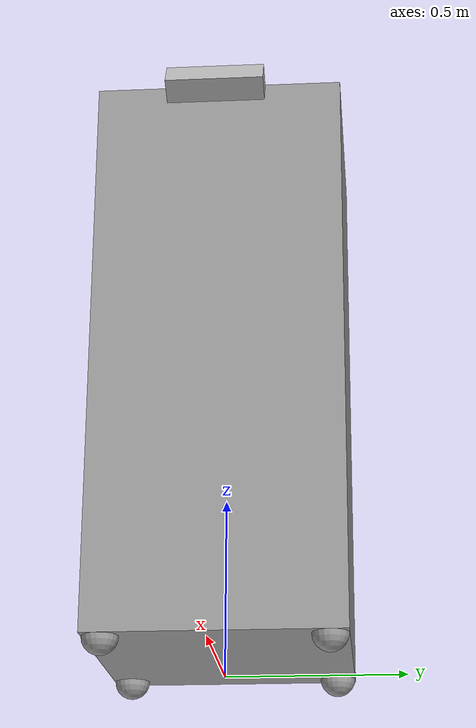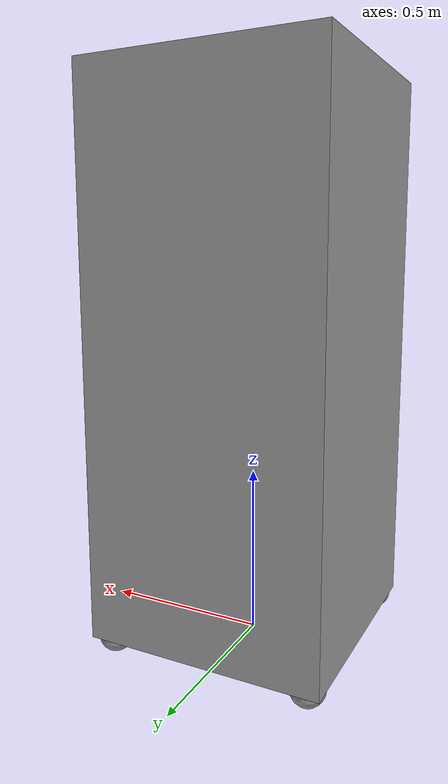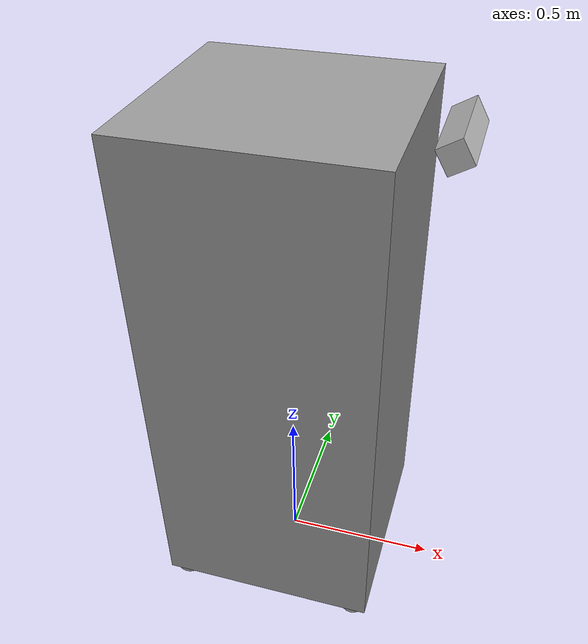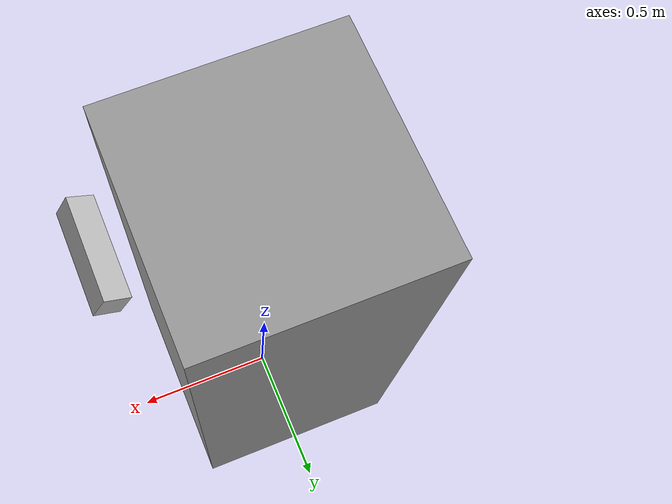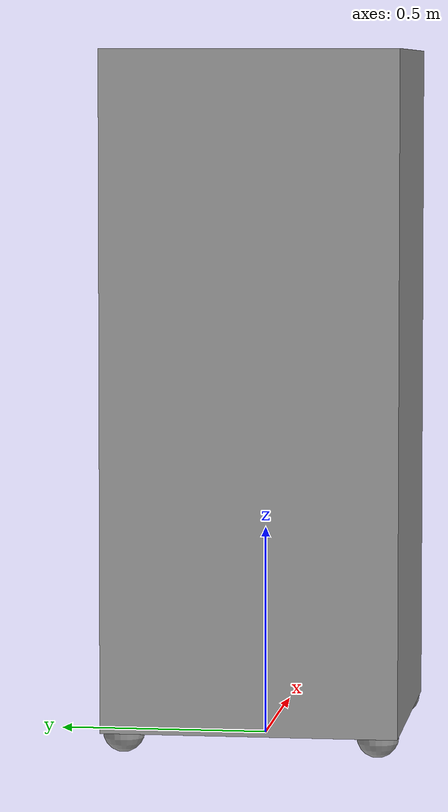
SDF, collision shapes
<?xml version='1.0'?>
<sdf version='1.7'>
<model  name='nested_model'>
<shadows>false</shadows>
   <include>
      <uri>model://zed_mini</uri>
      <pose>0.45 0 1.6 0 1.0472 0</pose>
    </include>
    <include>
      <uri>model://move_wheel_box</uri>
      <frame name="move_wheel_box"></frame>
      <pose>0 0 0.05 0 0 0</pose>
    </include>

    <joint name='link_1_JOINT_0' type='fixed'>
      <parent>move_wheel_box::link_1</parent>
      <child>zed_mini::camera_link</child>
    </joint>

    <static>0</static>
    <allow_auto_disable>1</allow_auto_disable>
</model>
</sdf>

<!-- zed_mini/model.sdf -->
<sdf version='1.7'>
    <model name='zed_mini'>
    <shadows>false</shadows>
      <link name='camera_link'>
        <inertial>
          <mass>0.1</mass>
        </inertial>

        <collision name='collision'>
          <geometry>
            <box>
              <size>0.073 0.276 0.072</size>
            </box>
          </geometry>
        </collision>
        <visual name='visual'>
          <cast_shadows>false</cast_shadows>
          <geometry>
            <mesh>
              <uri>../description/meshes/kinect.dae</uri>
            </mesh>
          </geometry>
        </visual>
        <sensor name='camera1' type='multicamera'>
          <pose>0 0 0 0 -0 0</pose>
          <update_rate>15</update_rate>
          <visualize>1</visualize>
          <camera name='left'>
            <pose relative_to='camera1'>0 0.0315 0 0 -0 0</pose>
            <horizontal_fov>1.373574</horizontal_fov>
            <image>
              <width>5472</width>
              <height>3648</height>
              <format>R8G8B8</format>
            </image>
            <clip>
              <near>0.1</near>
              <far>15</far>
            </clip>
            <noise>
              <type>gaussian</type>
              <mean>0</mean>
              <stddev>0.007</stddev>
            </noise>
          </camera>
          <plugin name='camera_controller' filename='libgazebo_ros_camera.so'>
            <ros>
              <namespace>demo_cam</namespace>
              <remapping>mycamera/left/image_raw:=mycamera/left/image_demo</remapping>
              <remapping>mycamera/left/camera_info:=mycamera/left/camera_info_demo</remapping>
            </ros>
            <camera_name>mycamera</camera_name>
          </plugin>
        </sensor>
      </link>
    </model>
    <static>0</static>
    <allow_auto_disable>1</allow_auto_disable>
</sdf>

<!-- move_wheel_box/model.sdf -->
<sdf version='1.7'>
  <model name='move_wheel_box'>
  <shadows>false</shadows>
    <link name='link_1'>
      <inertial>
        <mass>50</mass>
        <inertia>
          <ixx>12.7083</ixx>
          <ixy>0</ixy>
          <ixz>0</ixz>
          <iyy>12.7083</iyy>
          <iyz>0</iyz>
          <izz>4.08333</izz>
        </inertia>
        <pose>0 0 0 0 -0 0</pose>
      </inertial>
      <pose>-0.0 0.0 0.8 0 -0 0</pose>
      <gravity>1</gravity>
      <self_collide>0</self_collide>
      <kinematic>0</kinematic>
      <enable_wind>0</enable_wind>
      <visual name='visual'>
        <pose>0 0 0 0 -0 0</pose>
        <geometry>
          <box>
            <size>0.7 0.7 1.6</size>
          </box>
        </geometry>
        <material>
          <lighting>1</lighting>
          <script>
            <uri>file://media/materials/scripts/gazebo.material</uri>
            <name>Gazebo/Grey</name>
          </script>
          <shader type='pixel'>
            <normal_map>__default__</normal_map>
          </shader>
          <ambient>0.3 0.3 0.3 1</ambient>
          <diffuse>0.7 0.7 0.7 1</diffuse>
          <specular>0.01 0.01 0.01 1</specular>
          <emissive>0 0 0 1</emissive>
        </material>
        <transparency>0</transparency>
        <cast_shadows>0</cast_shadows>
      </visual>
      <collision name='collision'>
        <laser_retro>0</laser_retro>
        <max_contacts>10</max_contacts>
        <pose>0 0 0 0 -0 0</pose>
        <geometry>
          <box>
            <size>0.7 0.7 1.6</size>
          </box>
        </geometry>
        <surface>
          <friction>
            <ode>
              <mu>1</mu>
              <mu2>1</mu2>
              <fdir1>0 0 0</fdir1>
              <slip1>0</slip1>
              <slip2>0</slip2>
            </ode>
            <torsional>
              <coefficient>1</coefficient>
              <patch_radius>0</patch_radius>
              <surface_radius>0</surface_radius>
              <use_patch_radius>1</use_patch_radius>
              <ode>
                <slip>0</slip>
              </ode>
            </torsional>
          </friction>
          <bounce>
            <restitution_coefficient>0</restitution_coefficient>
            <threshold>1e+06</threshold>
          </bounce>
          <contact>
            <collide_without_contact>0</collide_without_contact>
            <collide_without_contact_bitmask>1</collide_without_contact_bitmask>
            <collide_bitmask>1</collide_bitmask>
            <ode>
              <soft_cfm>0</soft_cfm>
              <soft_erp>0.2</soft_erp>
              <kp>1e+13</kp>
              <kd>1</kd>
              <max_vel>0.01</max_vel>
              <min_depth>0</min_depth>
            </ode>
            <bullet>
              <split_impulse>1</split_impulse>
              <split_impulse_penetration_threshold>-0.01</split_impulse_penetration_threshold>
              <soft_cfm>0</soft_cfm>
              <soft_erp>0.2</soft_erp>
              <kp>1e+13</kp>
              <kd>1</kd>
            </bullet>
          </contact>
        </surface>
      </collision>
    </link>
    <plugin name='planar_move' filename='libgazebo_ros_planar_move.so'>
        <ros>
          <namespace>/demo</namespace>
          <remapping>cmd_vel:=cmd_demo</remapping>
          <remapping>odom:=odom_demo</remapping>
        </ros>

        <update_rate>100</update_rate>
        <publish_rate>10</publish_rate>

        <!-- output -->
        <publish_odom>true</publish_odom>
        <publish_odom_tf>true</publish_odom_tf>

        <odometry_frame>odom_demo</odometry_frame>
        <robot_base_frame>link</robot_base_frame>

        <covariance_x>0.0001</covariance_x>
        <covariance_y>0.0001</covariance_y>
        <covariance_yaw>0.01</covariance_yaw>
    </plugin>
    <link name='link_2'>
      <inertial>
        <mass>0.0311857</mass>
        <inertia>
          <ixx>0.00030897</ixx>
          <ixy>0</ixy>
          <ixz>0</ixz>
          <iyy>0.00030897</iyy>
          <iyz>0</iyz>
          <izz>0.00030897</izz>
        </inertia>
        <pose>0 0 0 0 -0 0</pose>
      </inertial>
      <pose>-0.3 -0.3 -0.0 0 -0 0</pose>
      <gravity>1</gravity>
      <self_collide>0</self_collide>
      <kinematic>0</kinematic>
      <enable_wind>0</enable_wind>
      <visual name='visual'>
        <pose>0 0 0 0 -0 0</pose>
        <geometry>
          <sphere>
            <radius>0.05</radius>
          </sphere>
        </geometry>
        <material>
          <lighting>1</lighting>
          <script>
            <uri>file://media/materials/scripts/gazebo.material</uri>
            <name>Gazebo/Grey</name>
          </script>
          <shader type='pixel'>
            <normal_map>__default__</normal_map>
          </shader>
          <ambient>0.3 0.3 0.3 1</ambient>
          <diffuse>0.7 0.7 0.7 1</diffuse>
          <specular>0.01 0.01 0.01 1</specular>
          <emissive>0 0 0 1</emissive>
        </material>
        <transparency>0</transparency>
        <cast_shadows>0</cast_shadows>
      </visual>
      <collision name='collision'>
        <laser_retro>0</laser_retro>
        <max_contacts>10</max_contacts>
        <pose>0 0 0 0 -0 0</pose>
        <geometry>
          <sphere>
            <radius>0.05</radius>
          </sphere>
        </geometry>
        <surface>
          <friction>
            <ode>
              <mu>1</mu>
              <mu2>1</mu2>
              <fdir1>0 0 0</fdir1>
              <slip1>0</slip1>
              <slip2>0</slip2>
            </ode>
            <torsional>
              <coefficient>1</coefficient>
              <patch_radius>0</patch_radius>
              <surface_radius>0</surface_radius>
              <use_patch_radius>1</use_patch_radius>
              <ode>
                <slip>0</slip>
              </ode>
            </torsional>
          </friction>
          <bounce>
            <restitution_coefficient>0</restitution_coefficient>
            <threshold>1e+06</threshold>
          </bounce>
          <contact>
            <collide_without_contact>0</collide_without_contact>
            <collide_without_contact_bitmask>1</collide_without_contact_bitmask>
            <collide_bitmask>1</collide_bitmask>
            <ode>
              <soft_cfm>0</soft_cfm>
              <soft_erp>0.2</soft_erp>
              <kp>1e+13</kp>
              <kd>1</kd>
              <max_vel>0.01</max_vel>
              <min_depth>0</min_depth>
            </ode>
            <bullet>
              <split_impulse>1</split_impulse>
              <split_impulse_penetration_threshold>-0.01</split_impulse_penetration_threshold>
              <soft_cfm>0</soft_cfm>
              <soft_erp>0.2</soft_erp>
              <kp>1e+13</kp>
              <kd>1</kd>
            </bullet>
          </contact>
        </surface>
      </collision>
    </link>
    <link name='link_2_clone'>
      <inertial>
        <mass>0.0311857</mass>
        <inertia>
          <ixx>0.00030897</ixx>
          <ixy>0</ixy>
          <ixz>0</ixz>
          <iyy>0.00030897</iyy>
          <iyz>0</iyz>
          <izz>0.00030897</izz>
        </inertia>
        <pose>0 0 0 0 -0 0</pose>
      </inertial>
      <pose>-0.3 0.3 -0.0 0 -0 0</pose>
      <gravity>1</gravity>
      <self_collide>0</self_collide>
      <kinematic>0</kinematic>
      <enable_wind>0</enable_wind>
      <visual name='visual'>
        <pose>0 0 0 0 -0 0</pose>
        <geometry>
          <sphere>
            <radius>0.05</radius>
          </sphere>
        </geometry>
        <material>
          <lighting>1</lighting>
          <script>
            <uri>file://media/materials/scripts/gazebo.material</uri>
            <name>Gazebo/Grey</name>
          </script>
          <shader type='pixel'>
            <normal_map>__default__</normal_map>
          </shader>
          <ambient>0.3 0.3 0.3 1</ambient>
          <diffuse>0.7 0.7 0.7 1</diffuse>
          <specular>0.01 0.01 0.01 1</specular>
          <emissive>0 0 0 1</emissive>
        </material>
        <transparency>0</transparency>
        <cast_shadows>0</cast_shadows>
      </visual>
      <collision name='collision'>
        <laser_retro>0</laser_retro>
        <max_contacts>10</max_contacts>
        <pose>0 0 0 0 -0 0</pose>
        <geometry>
          <sphere>
            <radius>0.05</radius>
          </sphere>
        </geometry>
        <surface>
          <friction>
            <ode>
              <mu>1</mu>
              <mu2>1</mu2>
              <fdir1>0 0 0</fdir1>
              <slip1>0</slip1>
              <slip2>0</slip2>
            </ode>
            <torsional>
              <coefficient>1</coefficient>
              <patch_radius>0</patch_radius>
              <surface_radius>0</surface_radius>
              <use_patch_radius>1</use_patch_radius>
              <ode>
                <slip>0</slip>
              </ode>
            </torsional>
          </friction>
          <bounce>
            <restitution_coefficient>0</restitution_coefficient>
            <threshold>1e+06</threshold>
          </bounce>
          <contact>
            <collide_without_contact>0</collide_without_contact>
            <collide_without_contact_bitmask>1</collide_without_contact_bitmask>
            <collide_bitmask>1</collide_bitmask>
            <ode>
              <soft_cfm>0</soft_cfm>
              <soft_erp>0.2</soft_erp>
              <kp>1e+13</kp>
              <kd>1</kd>
              <max_vel>0.01</max_vel>
              <min_depth>0</min_depth>
            </ode>
            <bullet>
              <split_impulse>1</split_impulse>
              <split_impulse_penetration_threshold>-0.01</split_impulse_penetration_threshold>
              <soft_cfm>0</soft_cfm>
              <soft_erp>0.2</soft_erp>
              <kp>1e+13</kp>
              <kd>1</kd>
            </bullet>
          </contact>
        </surface>
      </collision>
    </link>
    <link name='link_2_clone_0'>
      <inertial>
        <mass>0.0311857</mass>
        <inertia>
          <ixx>0.00030897</ixx>
          <ixy>0</ixy>
          <ixz>0</ixz>
          <iyy>0.00030897</iyy>
          <iyz>0</iyz>
          <izz>0.00030897</izz>
        </inertia>
        <pose>0 0 0 0 -0 0</pose>
      </inertial>
      <pose>0.3 -0.3 -0.0 0 -0 0</pose>
      <gravity>1</gravity>
      <self_collide>0</self_collide>
      <kinematic>0</kinematic>
      <enable_wind>0</enable_wind>
      <visual name='visual'>
        <pose>0 0 0 0 -0 0</pose>
        <geometry>
          <sphere>
            <radius>0.05</radius>
          </sphere>
        </geometry>
        <material>
          <lighting>1</lighting>
          <script>
            <uri>file://media/materials/scripts/gazebo.material</uri>
            <name>Gazebo/Grey</name>
          </script>
          <shader type='pixel'>
            <normal_map>__default__</normal_map>
          </shader>
          <ambient>0.3 0.3 0.3 1</ambient>
          <diffuse>0.7 0.7 0.7 1</diffuse>
          <specular>0.01 0.01 0.01 1</specular>
          <emissive>0 0 0 1</emissive>
        </material>
        <transparency>0</transparency>
        <cast_shadows>0</cast_shadows>
      </visual>
      <collision name='collision'>
        <laser_retro>0</laser_retro>
        <max_contacts>10</max_contacts>
        <pose>0 0 0 0 -0 0</pose>
        <geometry>
          <sphere>
            <radius>0.05</radius>
          </sphere>
        </geometry>
        <surface>
          <friction>
            <ode>
              <mu>1</mu>
              <mu2>1</mu2>
              <fdir1>0 0 0</fdir1>
              <slip1>0</slip1>
              <slip2>0</slip2>
            </ode>
            <torsional>
              <coefficient>1</coefficient>
              <patch_radius>0</patch_radius>
              <surface_radius>0</surface_radius>
              <use_patch_radius>1</use_patch_radius>
              <ode>
                <slip>0</slip>
              </ode>
            </torsional>
          </friction>
          <bounce>
            <restitution_coefficient>0</restitution_coefficient>
            <threshold>1e+06</threshold>
          </bounce>
          <contact>
            <collide_without_contact>0</collide_without_contact>
            <collide_without_contact_bitmask>1</collide_without_contact_bitmask>
            <collide_bitmask>1</collide_bitmask>
            <ode>
              <soft_cfm>0</soft_cfm>
              <soft_erp>0.2</soft_erp>
              <kp>1e+13</kp>
              <kd>1</kd>
              <max_vel>0.01</max_vel>
              <min_depth>0</min_depth>
            </ode>
            <bullet>
              <split_impulse>1</split_impulse>
              <split_impulse_penetration_threshold>-0.01</split_impulse_penetration_threshold>
              <soft_cfm>0</soft_cfm>
              <soft_erp>0.2</soft_erp>
              <kp>1e+13</kp>
              <kd>1</kd>
            </bullet>
          </contact>
        </surface>
      </collision>
    </link>
    <link name='link_2_clone_1'>
      <inertial>
        <mass>0.0311857</mass>
        <inertia>
          <ixx>0.00030897</ixx>
          <ixy>0</ixy>
          <ixz>0</ixz>
          <iyy>0.00030897</iyy>
          <iyz>0</iyz>
          <izz>0.00030897</izz>
        </inertia>
        <pose>0 0 0 0 -0 0</pose>
      </inertial>
      <pose>0.3 0.3 -0.0 0 -0 0</pose>
      <gravity>1</gravity>
      <self_collide>0</self_collide>
      <kinematic>0</kinematic>
      <enable_wind>0</enable_wind>
      <visual name='visual'>
        <pose>0 0 0 0 -0 0</pose>
        <geometry>
          <sphere>
            <radius>0.05</radius>
          </sphere>
        </geometry>
        <material>
          <lighting>1</lighting>
          <script>
            <uri>file://media/materials/scripts/gazebo.material</uri>
            <name>Gazebo/Grey</name>
          </script>
          <shader type='pixel'>
            <normal_map>__default__</normal_map>
          </shader>
          <ambient>0.3 0.3 0.3 1</ambient>
          <diffuse>0.7 0.7 0.7 1</diffuse>
          <specular>0.01 0.01 0.01 1</specular>
          <emissive>0 0 0 1</emissive>
        </material>
        <transparency>0</transparency>
        <cast_shadows>0</cast_shadows>
      </visual>
      <collision name='collision'>
        <laser_retro>0</laser_retro>
        <max_contacts>10</max_contacts>
        <pose>0 0 0 0 -0 0</pose>
        <geometry>
          <sphere>
            <radius>0.05</radius>
          </sphere>
        </geometry>
        <surface>
          <friction>
            <ode>
              <mu>1</mu>
              <mu2>1</mu2>
              <fdir1>0 0 0</fdir1>
              <slip1>0</slip1>
              <slip2>0</slip2>
            </ode>
            <torsional>
              <coefficient>1</coefficient>
              <patch_radius>0</patch_radius>
              <surface_radius>0</surface_radius>
              <use_patch_radius>1</use_patch_radius>
              <ode>
                <slip>0</slip>
              </ode>
            </torsional>
          </friction>
          <bounce>
            <restitution_coefficient>0</restitution_coefficient>
            <threshold>1e+06</threshold>
          </bounce>
          <contact>
            <collide_without_contact>0</collide_without_contact>
            <collide_without_contact_bitmask>1</collide_without_contact_bitmask>
            <collide_bitmask>1</collide_bitmask>
            <ode>
              <soft_cfm>0</soft_cfm>
              <soft_erp>0.2</soft_erp>
              <kp>1e+13</kp>
              <kd>1</kd>
              <max_vel>0.01</max_vel>
              <min_depth>0</min_depth>
            </ode>
            <bullet>
              <split_impulse>1</split_impulse>
              <split_impulse_penetration_threshold>-0.01</split_impulse_penetration_threshold>
              <soft_cfm>0</soft_cfm>
              <soft_erp>0.2</soft_erp>
              <kp>1e+13</kp>
              <kd>1</kd>
            </bullet>
          </contact>
        </surface>
      </collision>
    </link>

    <joint name='link_1_JOINT_1' type='ball'>
      <parent>link_1</parent>
      <child>link_2</child>
      <pose>0 0 0 0 -0 0</pose>
      <physics>
        <ode>
          <limit>
            <cfm>0</cfm>
            <erp>0.2</erp>
          </limit>
          <suspension>
            <cfm>0</cfm>
            <erp>0.2</erp>
          </suspension>
        </ode>
      </physics>
    </joint>
    <joint name='link_1_JOINT_2' type='ball'>
      <parent>link_1</parent>
      <child>link_2_clone</child>
      <pose>0 0 0 0 -0 0</pose>
      <physics>
        <ode>
          <limit>
            <cfm>0</cfm>
            <erp>0.2</erp>
          </limit>
          <suspension>
            <cfm>0</cfm>
            <erp>0.2</erp>
          </suspension>
        </ode>
      </physics>
    </joint>
    <joint name='link_1_JOINT_3' type='ball'>
      <parent>link_1</parent>
      <child>link_2_clone_0</child>
      <pose>0 0 0 0 -0 0</pose>
      <physics>
        <ode>
          <limit>
            <cfm>0</cfm>
            <erp>0.2</erp>
          </limit>
          <suspension>
            <cfm>0</cfm>
            <erp>0.2</erp>
          </suspension>
        </ode>
      </physics>
    </joint>
    <joint name='link_1_JOINT_4' type='ball'>
      <parent>link_1</parent>
      <child>link_2_clone_1</child>
      <pose>0 0 0 0 -0 0</pose>
      <physics>
        <ode>
          <limit>
            <cfm>0</cfm>
            <erp>0.2</erp>
          </limit>
          <suspension>
            <cfm>0</cfm>
            <erp>0.2</erp>
          </suspension>
        </ode>
      </physics>
    </joint>
    <static>0</static>
    <allow_auto_disable>1</allow_auto_disable>
  </model>
</sdf>
